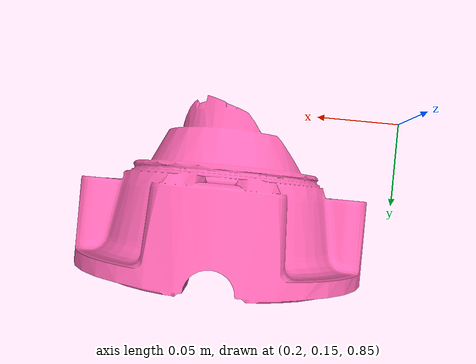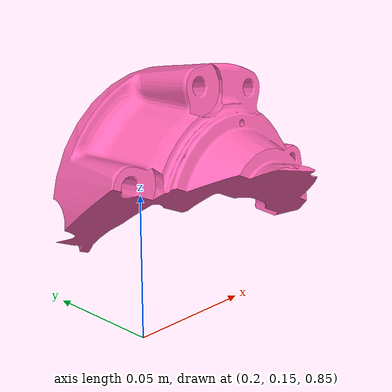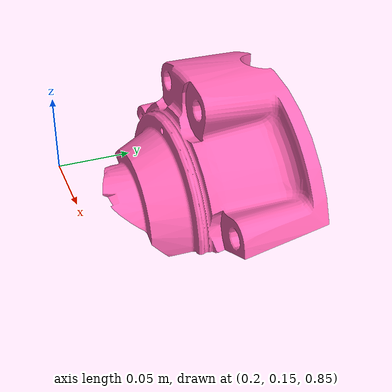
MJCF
<?xml version="1.0"?>
<mujoco model="d435i_cam">

  <!-- найдёт OBJ-файлы там же, где основная сцена -->
  <compiler meshdir="assets" angle="radian"/>

  <asset>
    <mesh name="fractured_part"   file="reaxis_fractured_part_0.stl" scale="0.1 0.1 0.1"/>
  </asset>

  <worldbody>
    <body name="fractured_body" pos="0.3 0.2 0.9">
      <freejoint/>
      <geom type="mesh" mesh="fractured_part" rgba="1 .4 .7 1"
            group="1" contype="0" conaffinity="0"/>
      <geom type="mesh" mesh="fractured_part" group="0"/>
    </body>
  </worldbody>
</mujoco>
